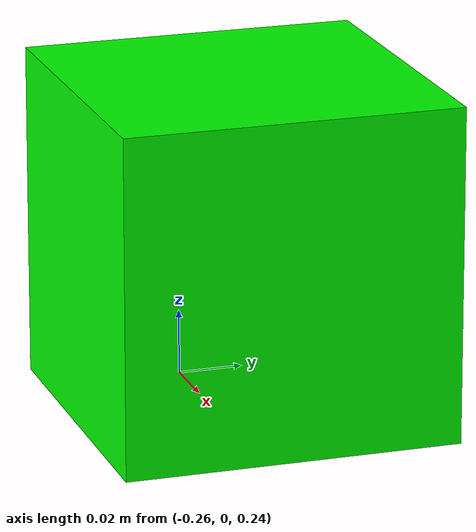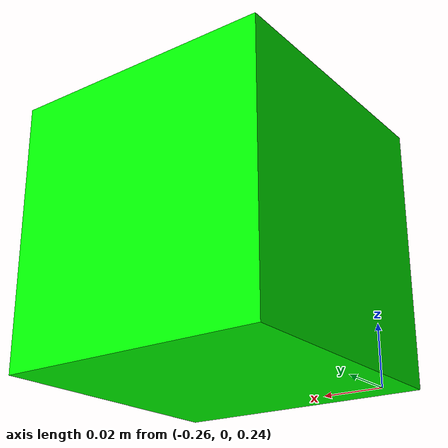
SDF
<?xml version="1.0" ?>
<sdf version="1.7">
  <model name='top_camera'>

    <link name="top_camera_link">
      <visual name="camera_visual">
        <pose>-0.2 0 0.3 0 0 3.14</pose>
        <geometry>
          <box>
            <size>0.1 0.1 0.1</size>
          </box>
        </geometry>
        <material>
          <ambient>0 1 0 1</ambient>
          <diffuse>0 1 0 1</diffuse>
          <specular>0.5 0.5 0.5 1</specular>
        </material>
      </visual>

      <sensor name="camera" type="camera">
        <pose>-0.2 0 0.3 0 0.0 0</pose>
        <camera>
          <horizontal_fov>1.047</horizontal_fov>
          <image>
            <width>320</width>
            <height>240</height>
          </image>
          <clip>
            <near>0.1</near>
            <far>100</far>
          </clip>
        </camera>
        <always_on>1</always_on>
        <update_rate>30</update_rate>
        <visualize>true</visualize>
        <topic>top/camera</topic>
      </sensor>
    </link>
  </model>
</sdf>
